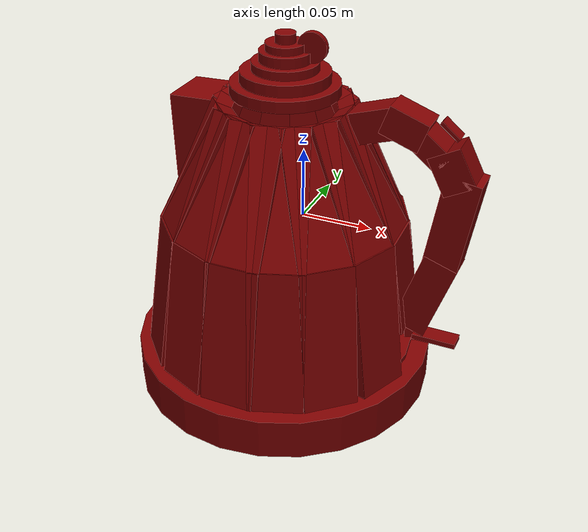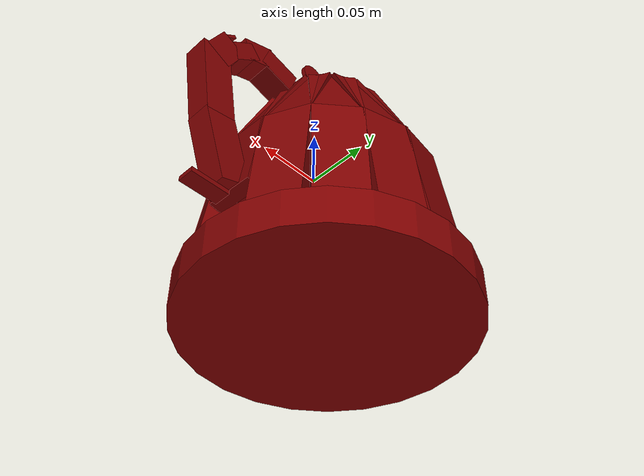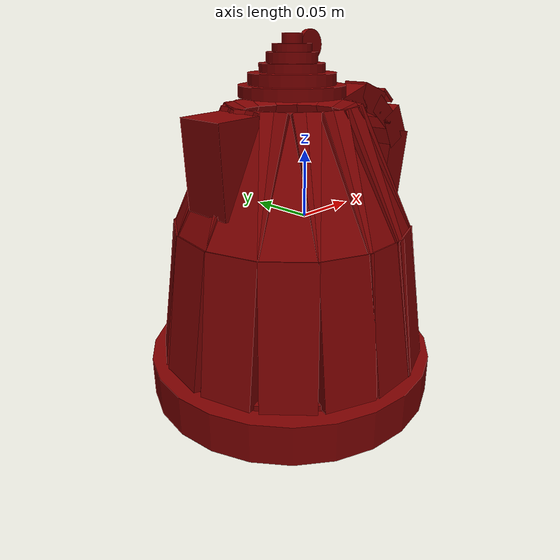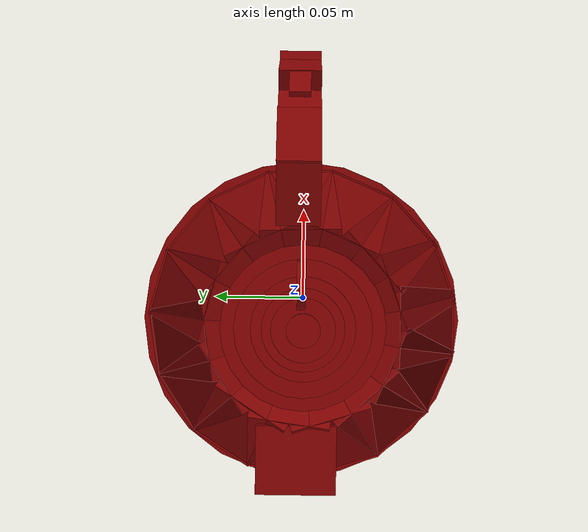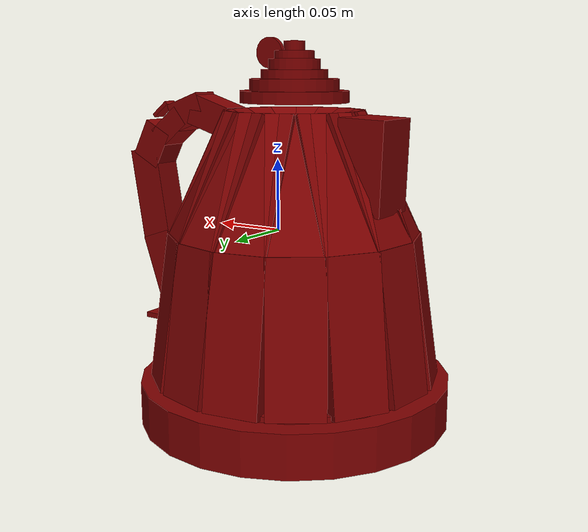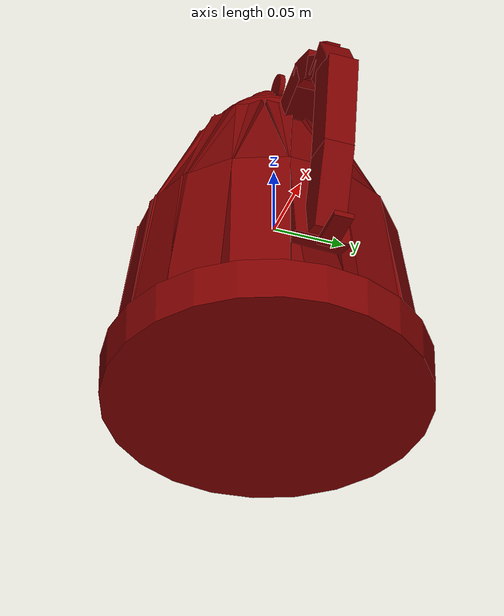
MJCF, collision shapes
<?xml version='1.0' encoding='UTF-8'?>
<mujoco model="model">
  <option timestep="0.002" gravity="0.0 0.0 -9.81"/>
  <compiler angle="radian"/>
  <asset>
    <mesh file="visuals/button_lid.obj" name="button_lid_vis"/>
    <mesh file="visuals/Body001.obj" name="Body001_vis"/>
    <mesh file="visuals/kettle_main.obj" name="kettle_main_vis"/>
    <mesh file="visuals/lid.obj" name="lid_vis"/>
    <mesh file="visuals/switch.obj" name="switch_vis"/>
    <texture file="visuals/T_BC001.png" name="Body001_material" type="2d"/>
    <material name="Body001_material" rgba="1 1 1 1.0" texture="Body001_material" shininess="0.5" specular="1"/>
    <texture file="visuals/T_BC001.png" name="kettle_main_material" type="2d"/>
    <material name="kettle_main_material" rgba="1 1 1 1.0" texture="kettle_main_material" shininess="0.5" specular="1"/>
    <texture file="visuals/T_BC001.png" name="button_lid_material" type="2d"/>
    <material name="button_lid_material" rgba="1 1 1 1.0" texture="button_lid_material" shininess="0.5" specular="1"/>
    <texture file="visuals/T_BC001.png" name="lid_material" type="2d"/>
    <material name="lid_material" rgba="1 1 1 1.0" texture="lid_material" shininess="0.5" specular="1"/>
    <texture file="visuals/T_BC001.png" name="switch_material" type="2d"/>
    <material name="switch_material" rgba="1 1 1 1.0" texture="switch_material" shininess="0.5" specular="1"/>
  </asset>
  <default>
    <default class="visual">
      <geom conaffinity="0" contype="0" group="1" type="mesh"/>
    </default>
    <default class="collision">
      <geom group="0" rgba="0.5 0 0 0.5"/>
    </default>
    <default class="spawn">
      <geom group="0" rgba="1 1 1 0.5" contype="0" conaffinity="0"/>
      <site group="0" rgba="1 1 1 0.5"/>
    </default>
    <default class="region">
      <geom group="1" conaffinity="0" contype="0" rgba="0 1 0 0" mass="0"/>
    </default>
  </default>
  <worldbody>
    <body>
      <body name="object">
        <geom mesh="Body001_vis" type="mesh" solimp="0.998 0.998 0.001" solref="0.001 1" friction="0.95 0.3 0.1" class="visual" material="Body001_material"/>
        <geom type="cylinder" pos="-0.01461932621896267 0.0007243109866976738 -0.11814795434474945" size="0.11004693806171417 0.015182497911155224" quat="1.0 0.0 0.0 0.0" class="collision"/>
        <body name="kettle_main">
          <geom mesh="kettle_main_vis" type="mesh" solimp="0.998 0.998 0.001" solref="0.001 1" friction="0.95 0.3 0.1" class="visual" material="kettle_main_material"/>
          <geom type="cylinder" pos="-0.01461932621896267 0.0007243109866976738 -0.10015259683132172" size="0.0968940481543541 0.0019463932840153575" quat="1.0 0.0 0.0 0.0" class="collision"/>
          <geom type="box" pos="-0.013354918919503689 -0.06037257984280586 0.03936608135700226" size="0.01927150972187519 0.0056108939461410046 0.047147102653980255" quat="0.9755426645278931 -0.21981018781661987 -0.0 0.0" class="collision"/>
          <geom type="box" pos="-0.013354918919503689 -0.0878482535481453 -0.050580400973558426" size="0.01927150972187519 0.005610893480479717 0.05105685070157051" quat="0.9974405765533447 -0.07150019705295563 -0.0 0.0" class="collision"/>
          <geom type="box" pos="-0.04784507676959038 -0.08092913031578064 -0.050580404698848724" size="0.01927150972187519 0.005610893480479717 0.05105685070157051" quat="0.9772441983222961 -0.07005245238542557 0.014315464533865452 -0.1997034251689911" class="collision"/>
          <geom type="box" pos="-0.03706572949886322 -0.05565626174211502 0.03936608135700226" size="0.01927150972187519 0.005610893480479717 0.04714709892868996" quat="0.9557897448539734 -0.21535931527614594 0.04400944337248802 -0.1953190416097641" class="collision"/>
          <geom type="box" pos="-0.05806240439414978 -0.040918417274951935 0.03936608135700226" size="0.01927150972187519 0.005610893480479717 0.04714709892868996" quat="0.8924745917320251 -0.20109312236309052 0.08875828236341476 -0.39391955733299255" class="collision"/>
          <geom type="box" pos="-0.07836207002401352 -0.059434227645397186 -0.050580404698848724" size="0.01927150972187519 0.005610893480479717 0.05105685070157051" quat="0.912507951259613 -0.06541191786527634 0.028871437534689903 -0.4027617275714874" class="collision"/>
          <geom type="box" pos="-0.09745042026042938 -0.02642616257071495 -0.050580404698848724" size="0.01927150972187519 0.005610893480479717 0.05105685070157051" quat="0.8033521771430969 -0.05758723244071007 0.04237911477684975 -0.5911962389945984" class="collision"/>
          <geom type="box" pos="-0.07121779024600983 -0.01825539581477642 0.03936608135700226" size="0.01927150972187519 0.005610893480479717 0.04714709892868996" quat="0.7857152819633484 -0.1770380139350891 0.1302843540906906 -0.578217089176178" class="collision"/>
          <geom type="box" pos="-0.07348096370697021 0.008224783465266228 0.03936608135700226" size="0.01927150972187519 0.005610893480479717 0.04714709892868996" quat="0.6391790509223938 -0.14402034878730774 0.1660560518503189 -0.7369760274887085" class="collision"/>
          <geom type="box" pos="-0.10068050026893616 0.01211029663681984 -0.050580404698848724" size="0.01927150972187519 0.005610893480479717 0.05105685070157051" quat="0.6535266637802124 -0.04684718698263168 0.05401499196887016 -0.75351881980896" class="collision"/>
          <geom type="box" pos="-0.08778393268585205 0.047165397554636 -0.050580404698848724" size="0.01927150785923004 0.005610893480479717 0.05105685070157051" quat="0.4783940017223358 -0.034293025732040405 0.06273964792490005 -0.8752296566963196" class="collision"/>
          <geom type="box" pos="-0.06465733051300049 0.03233056887984276 0.03936608135700226" size="0.01927150785923004 0.005610893480479717 0.04714709892868996" quat="0.46789127588272095 -0.1054256483912468 0.19287791848182678 -0.8560147881507874" class="collision"/>
          <geom type="box" pos="-0.04682711511850357 0.050453394651412964 0.03936608135700226" size="0.01927150972187519 0.005610893480479717 0.04714709892868996" quat="0.2771659791469574 -0.06245126575231552 0.2107517570257187 -0.9353408813476562" class="collision"/>
          <geom type="box" pos="-0.06179620698094368 0.07349331676959991 -0.050580404698848724" size="0.01927150972187519 0.005610893480479717 0.05105685070157051" quat="0.28338751196861267 -0.020314250141382217 0.06855370104312897 -0.9563363790512085" class="collision"/>
          <geom type="box" pos="-0.027007251977920532 0.08683008700609207 -0.050580404698848724" size="0.01927150972187519 0.0056108939461410046 0.05105685070157051" quat="0.07414495199918747 -0.005314982030540705 0.0713023841381073 -0.9946810007095337" class="collision"/>
          <geom type="box" pos="-0.022933734580874443 0.05965806543827057 0.03936608135700226" size="0.01927150972187519 0.005610893480479717 0.04714709892868996" quat="0.07251717150211334 -0.01633962243795395 0.21920190751552582 -0.9728436470031738" class="collision"/>
          <geom type="box" pos="0.0017953524366021156 0.05835829675197601 0.03936608135700226" size="0.01927150972187519 0.005610893480479717 0.04714709892868996" quat="0.12853960692882538 -0.028962671756744385 -0.21789368987083435 0.9670372605323792" class="collision"/>
          <geom type="box" pos="0.008972728624939919 0.08487993478775024 -0.050580404698848724" size="0.01927150972187519 0.005610893480479717 0.05105685070157051" quat="0.1314249336719513 -0.009421017952263355 -0.07087679207324982 0.9887442588806152" class="collision"/>
          <geom type="box" pos="0.04186876863241196 0.06806397438049316 -0.050580404698848724" size="0.01927150972187519 0.005610893480479717 0.05105685070157051" quat="0.3363957703113556 -0.024114089086651802 -0.06731113791465759 0.9390024542808533" class="collision"/>
          <geom type="box" pos="0.02442174404859543 0.046838659793138504 0.03936608135700226" size="0.01927150972187519 0.005610893480479717 0.04714709892868996" quat="0.3290105164051056 -0.07413291931152344 -0.20693181455135345 0.9183875322341919" class="collision"/>
          <geom type="box" pos="0.040716614574193954 0.026209238916635513 0.03936608135700226" size="0.01927150972187519 0.005610893480479717 0.04714709892868996" quat="0.5210679769515991 -0.11740747839212418 -0.18582776188850403 0.8247252106666565" class="collision"/>
          <geom type="box" pos="0.0655301958322525 0.03800748661160469 -0.050580404698848724" size="0.01927150972187519 0.005610893480479717 0.05105685070157051" quat="0.5327644348144531 -0.03819049522280693 -0.060446351766586304 0.8432376980781555" class="collision"/>
          <geom type="box" pos="0.07188587635755539 0.0030217221938073635 -0.035045772790908813" size="0.01927151158452034 0.0056108939461410046 0.035361744463443756" quat="0.6940592527389526 -0.04975270852446556 -0.05135120823979378 0.716358482837677" class="collision"/>
          <geom type="box" pos="0.04666148126125336 0.0022239089012145996 0.03936608135700226" size="0.01927151158452034 0.005610893480479717 0.04714709892868996" quat="0.6788218021392822 -0.15295268595218658 -0.15786685049533844 0.7006314992904663" class="collision"/>
          <geom type="box" pos="0.042037226259708405 -0.023271363228559494 0.03936608135700226" size="0.01927151158452034 0.005610893480479717 0.04714709892868996" quat="0.813357949256897 -0.18326649069786072 -0.12136665731668472 0.5386393666267395" class="collision"/>
          <geom type="box" pos="0.06733403354883194 -0.03399444743990898 -0.050580404698848724" size="0.01927150972187519 0.005610893480479717 0.05105685070157051" quat="0.8316153287887573 -0.059613242745399475 -0.03947834670543671 0.5507301092147827" class="collision"/>
          <geom type="box" pos="0.045532673597335815 -0.06490273028612137 -0.050580404698848724" size="0.01927150972187519 0.005610893480479717 0.05105685070157051" quat="0.9306759834289551 -0.06671427190303802 -0.02571934647858143 0.3587895333766937" class="collision"/>
          <geom type="box" pos="0.02708921581506729 -0.044537290930747986 0.03936608135700226" size="0.01927150972187519 0.005610893480479717 0.04714709892868996" quat="0.9102438688278198 -0.20509688556194305 -0.07906793057918549 0.3509126305580139" class="collision"/>
          <geom type="box" pos="0.007277412340044975 -0.05662263557314873 0.03936609625816345" size="0.01927151158452034 0.005610893480479717 0.047147102653980255" quat="0.9607177376747131 -0.21646980941295624 -0.038175031542778015 0.16942515969276428" class="collision"/>
          <geom type="box" pos="0.016675930470228195 -0.08244085311889648 -0.050580404698848724" size="0.01927150972187519 0.005610893480479717 0.05105685070157051" quat="0.9822828769683838 -0.07041370123624802 -0.012417654506862164 0.17322832345962524" class="collision"/>
          <geom type="box" pos="-0.07533188164234161 0.00254449644125998 0.050541434437036514" size="0.016298513859510422 0.01895124651491642 0.030848830938339233" quat="0.9998403787612915 3.754025534874472e-09 -0.017866261303424835 2.0973059733364607e-08" class="collision"/>
          <geom class="collision" type="box" pos="0.10458327829837799 0.00278834393247962 0.056553855538368225" size="0.013974262401461601 0.010425304993987083 0.011696386151015759" quat="0.8557707667350769 0.0 0.51735520362854 0.0" name="handle_4"/>
          <geom class="collision" type="box" pos="0.051533207297325134 0.00278834393247962 0.0790233463048935" size="0.015717824921011925 0.010425304993987083 0.01086315419524908" quat="0.9884176254272461 0.0 -0.15175819396972656 0.0" name="handle_1"/>
          <geom class="collision" type="box" pos="0.07131754606962204 0.00278834393247962 0.08053111284971237" size="0.014116673730313778 0.010425304993987083 0.010394532233476639" quat="0.9849125742912292 0.0 0.1730526238679886 0.0" name="handle_2"/>
          <geom class="collision" type="box" pos="0.10760972648859024 0.00278834393247962 0.01878773607313633" size="0.033951666206121445 0.010425304993987083 0.012280195951461792" quat="0.6486070156097412 0.0 0.7611234784126282 0.0" name="handle_main"/>
          <geom class="collision" type="box" pos="0.09363839030265808 0.00278834393247962 -0.039925891906023026" size="0.030212007462978363 0.010425304993987083 0.012280197814106941" quat="0.582497775554657 0.0 0.8128322958946228 0.0" name="handle_5"/>
          <geom class="collision" type="box" pos="0.08776570111513138 0.002788345329463482 0.06953726708889008" size="0.014116673730313778 0.010425304993987083 0.008028846234083176" quat="0.9435935020446777 -3.7857370571714455e-09 0.3311062157154083 2.154616574046031e-08" name="handle_3"/>
          <body name="button_lid">
            <joint axis="-0.6293202638626099 0.0 -0.7771461606025696" pos="0.09966688603162766 0.0027082753367722034 0.08179624378681183" limited="true" name="button_lid_joint" range="0.0 0.002" type="slide" damping="1" frictionloss="1" armature=".01" stiffness="0.5" springref="-0.5"/>
            <geom mesh="button_lid_vis" type="mesh" solimp="0.998 0.998 0.001" solref="0.001 1" friction="0.95 0.3 0.1" class="visual" material="button_lid_material"/>
            <geom class="collision" type="box" pos="0.09987294673919678 0.002708274871110916 0.08204381167888641" size="0.007922406308352947 0.005134806036949158 0.0014202957972884178" quat="0.9435935020446777 -3.7857370571714455e-09 0.3311062157154083 2.154616574046031e-08" name="button_lid_main"/>
          </body>
          <body name="lid">
            <joint axis="0.0 1.0 0.0" pos="0.027506254613399506 -2.7567148208618164e-07 0.08271406590938568" limited="true" name="lid_joint" range="0.0 1.3707963267948966" type="hinge" damping="1" frictionloss="1" armature=".01" stiffness="0.05"/>
            <geom mesh="lid_vis" type="mesh" solimp="0.998 0.998 0.001" solref="0.001 1" friction="0.95 0.3 0.1" class="visual" material="lid_material"/>
            <geom class="collision" type="cylinder" pos="-0.013670741580426693 -2.7567148208618164e-07 0.09330868721008301" size="0.037384726107120514 0.004005924798548222" quat="1.0 0.0 0.0 0.0" name="lid_main"/>
            <geom class="collision" type="cylinder" pos="-0.013670741580426693 -2.7567148208618164e-07 0.10119523853063583" size="0.03063269518315792 0.004041273146867752" quat="1.0 0.0 0.0 0.0" name="lid_1"/>
            <geom class="collision" type="cylinder" pos="-0.013670741580426693 -2.7567148208618164e-07 0.10837311297655106" size="0.02281208150088787 0.003009524429216981" quat="1.0 0.0 0.0 0.0" name="lid_2"/>
            <geom class="collision" type="cylinder" pos="-0.013670741580426693 -2.7567148208618164e-07 0.11487813293933868" size="0.017764339223504066 0.003584065707400441" quat="1.0 0.0 0.0 0.0" name="lid_3"/>
            <geom class="collision" type="cylinder" pos="-0.013670741580426693 -2.7567148208618164e-07 0.12095686793327332" size="0.01356508582830429 0.002736841794103384" quat="1.0 0.0 0.0 0.0" name="lid_4"/>
            <geom class="collision" type="cylinder" pos="-0.013670741580426693 -2.7567148208618164e-07 0.12683629989624023" size="0.00706313643604517 0.0032757699955254793" quat="1.0 0.0 0.0 0.0" name="lid_5"/>
            <geom class="collision" type="cylinder" pos="0.005034658592194319 0.001037760404869914 0.12239812314510345" size="0.010371837764978409 0.001863969024270773" quat="0.7071068286895752 0.7071067690849304 0.0 0.0" name="lid_6"/>
          </body>
          <body name="switch">
            <joint axis="0.0 0.0 -1.0" pos="0.09705869108438492 0.003606777172535658 -0.07823503017425537" limited="true" name="switch_joint" range="0.0 0.01" type="slide" damping="1" frictionloss="1" armature=".01" stiffness="0.05" springref="-1.0"/>
            <geom mesh="switch_vis" type="mesh" solimp="0.998 0.998 0.001" solref="0.001 1" friction="0.95 0.3 0.1" class="visual" material="switch_material"/>
            <geom class="collision" type="box" pos="0.10224733501672745 0.003606625134125352 -0.07818788290023804" size="0.01569483056664467 0.006656229961663485 0.001971823861822486" quat="1.0 0.0 0.0 0.0" name="switch_main"/>
          </body>
        </body>
        <geom class="region" name="reg_main" type="box" pos="1.862645149230957e-09 0.0 0.0" size="0.12272295898199082 0.10904611444473267 0.1337790915966034"/>
      </body>
    </body>
  </worldbody>
  <actuator>
    <motor name="button_lid_joint_actuator" joint="button_lid_joint" gear="0.3"/>
    <motor name="lid_joint_actuator" joint="lid_joint" gear="0.5"/>
    <motor name="switch_joint_actuator" joint="switch_joint" gear="0.5"/>
  </actuator>
</mujoco>
